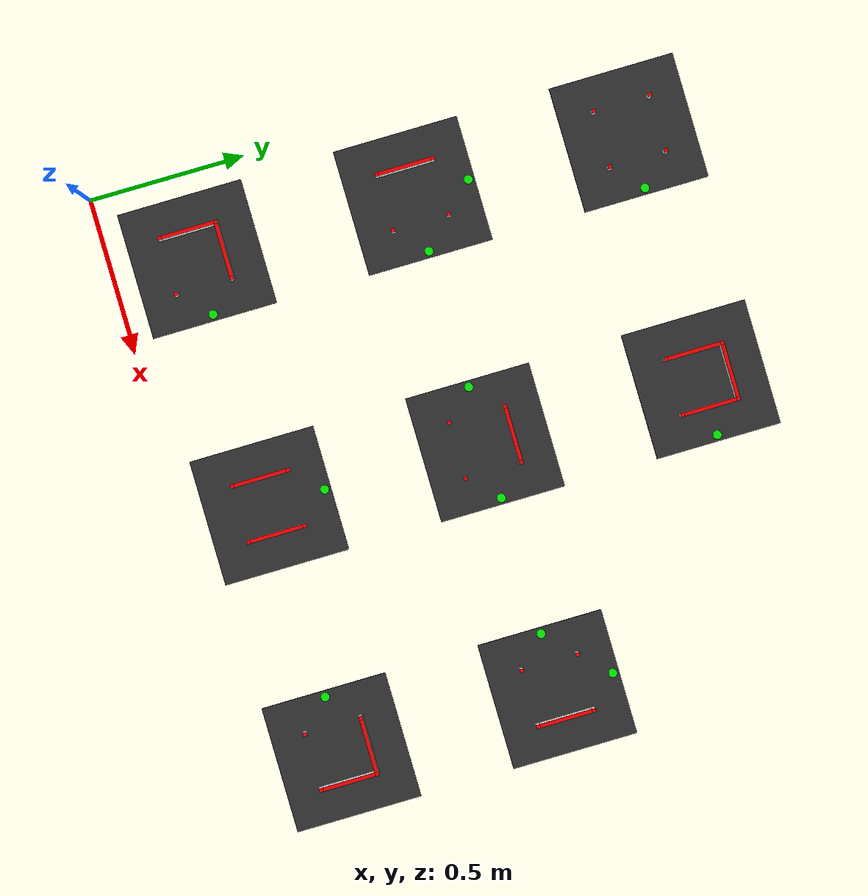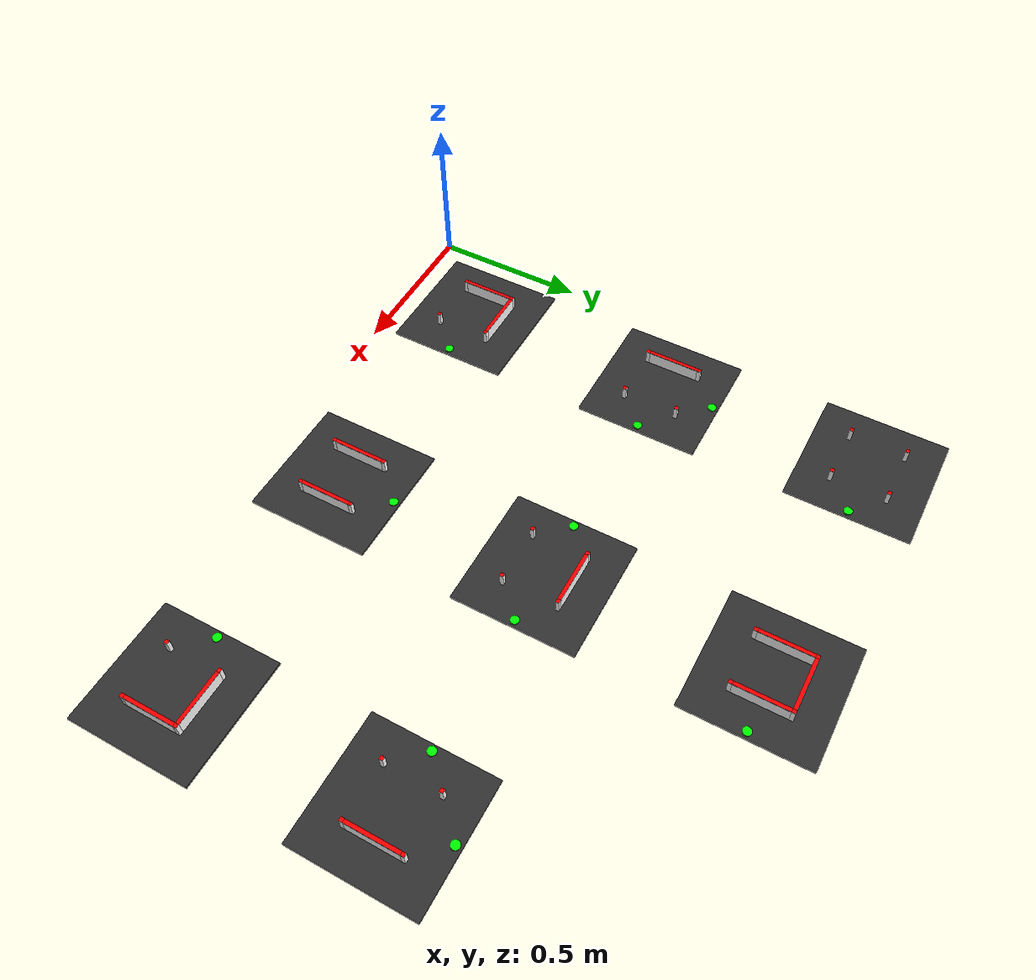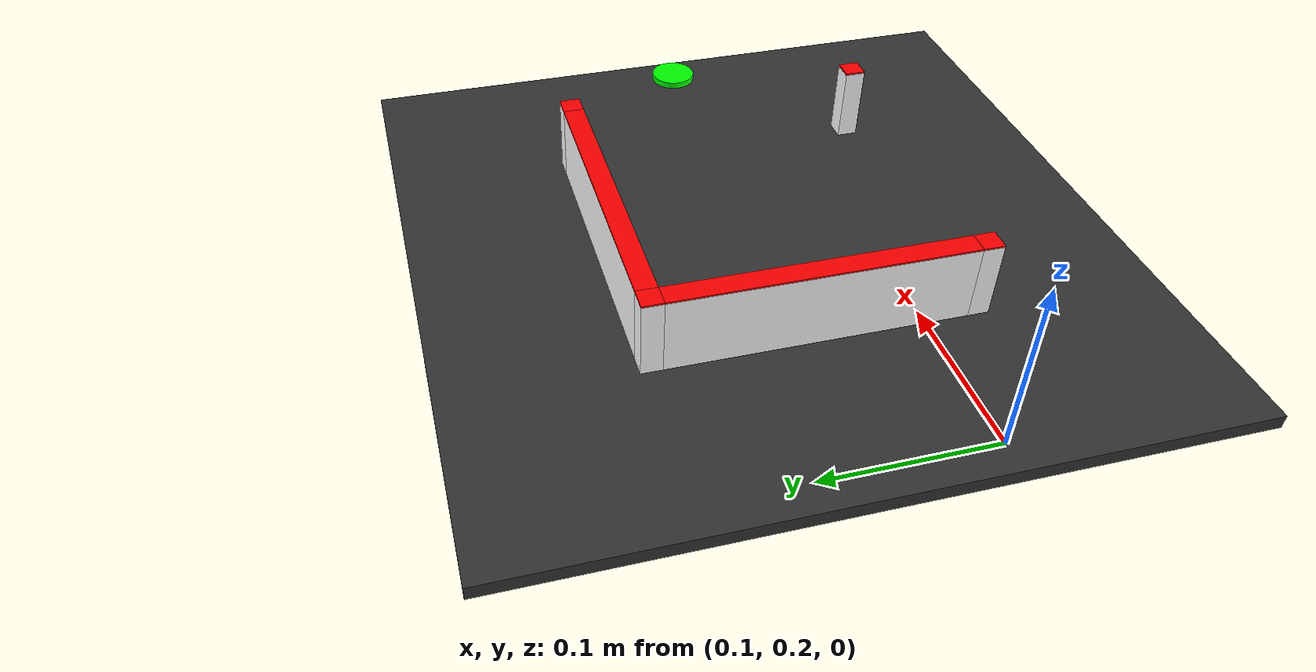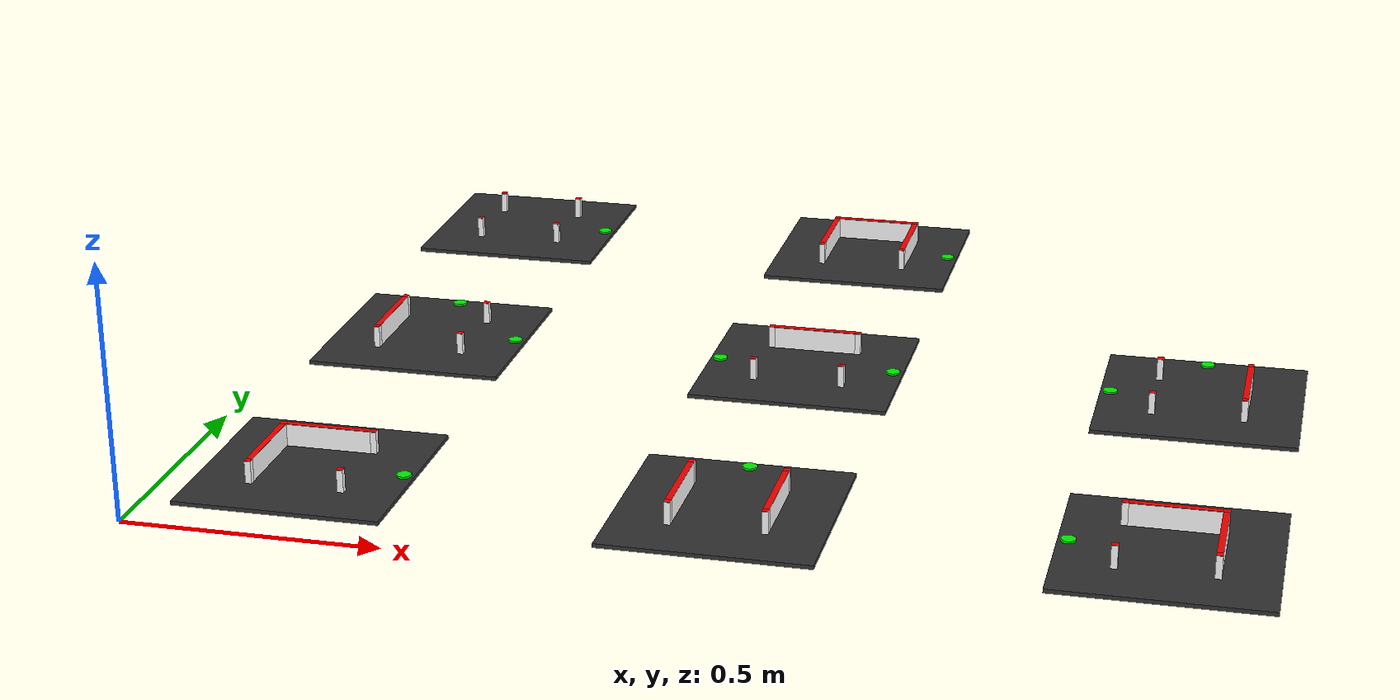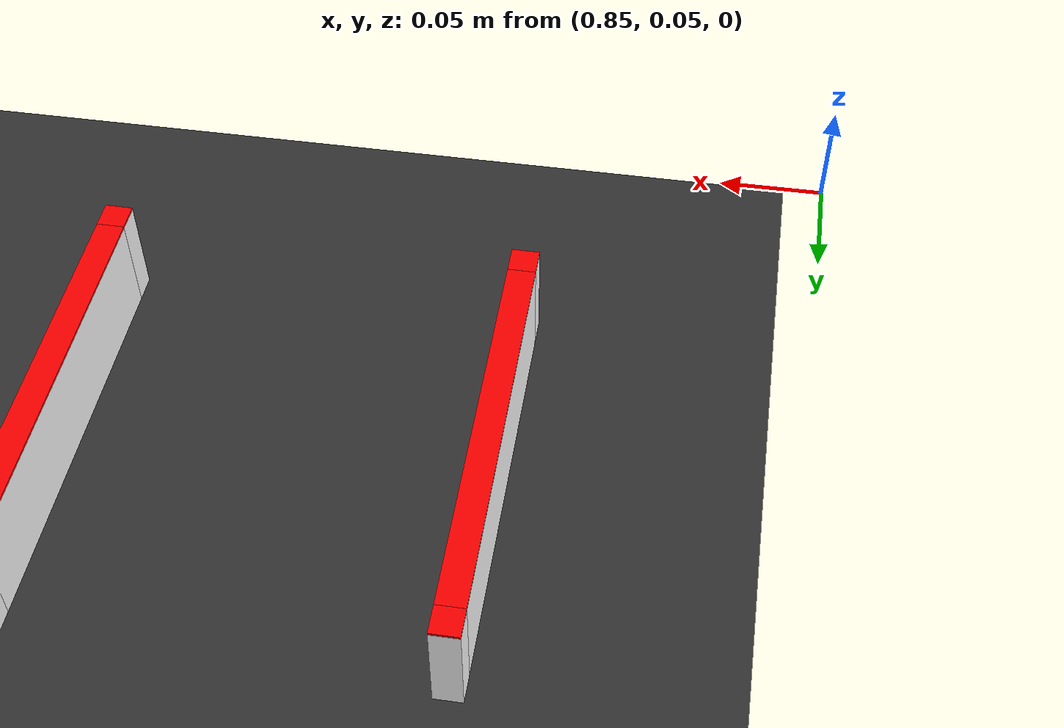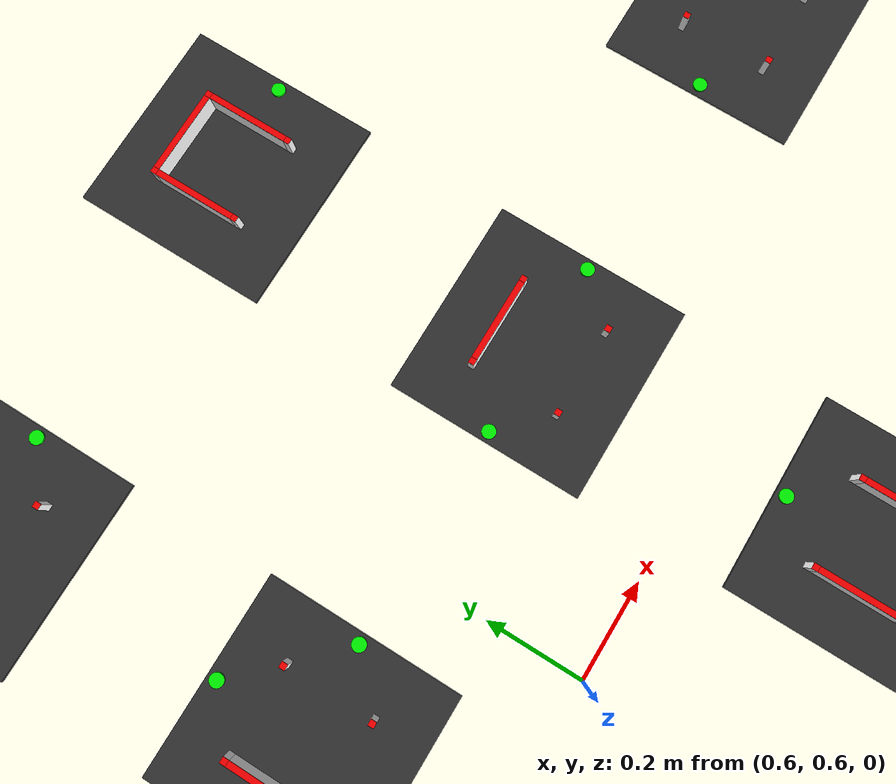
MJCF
<mujoco model="maze">
<compiler angle="degree" coordinate="local" inertiafromgeom="true" />
    <option integrator="RK4" />
    <worldbody>
       <!-- ベース板 -->
        <body name="base_plate1" pos="0.27 0.27 0.013">
        <geom type="box" mass="0.1" size="0.20 0.20 0.004" rgba="0.2 0.2 0.2 1" friction="0.0 0.0 0.0"/>
        </body>

        <!-- Column 1-6-->
        <body pos="0.18 0.18 0.037">
            <body pos="0 0 -0.0005">
                <geom type="box" mass="0.01" size="0.006 0.006 0.0245" rgba="1 1 1 1"/>
            </body>
            <!--柱上赤蓋-->
            <body pos="0 0 0.0245">
                <geom type="box" mass="0.01" size="0.006 0.006 0.0005" rgba="1 0 0 1"/>
            </body>
        </body>
        <!-- Column 1-7-->
        <body pos="0.36 0.18 0.037">
            <body pos="0 0 -0.0005">
                <geom type="box" mass="0.01" size="0.006 0.006 0.0245" rgba="1 1 1 1"/>
            </body>
            <!--柱上赤蓋-->
            <body pos="0 0 0.0245">
                <geom type="box" mass="0.01" size="0.006 0.006 0.0005" rgba="1 0 0 1"/>
            </body>
        </body>
        <!-- Column 2-10-->
        <body pos="0.18 0.36 0.037">
            <body pos="0 0 -0.0005">
                <geom type="box" mass="0.01" size="0.006 0.006 0.0245" rgba="1 1 1 1"/>
            </body>
            <!--柱上赤蓋-->
            <body pos="0 0 0.0245">
                <geom type="box" mass="0.01" size="0.006 0.006 0.0005" rgba="1 0 0 1"/>
            </body>
        </body>
        <!-- Column 1-11-->
        <body pos="0.36 0.36 0.037">
            <body pos="0 0 -0.0005">
                <geom type="box" mass="0.01" size="0.006 0.006 0.0245" rgba="1 1 1 1"/>
            </body>
            <!--柱上赤蓋-->
            <body pos="0 0 0.0245">
                <geom type="box" mass="0.01" size="0.006 0.006 0.0005" rgba="1 0 0 1"/>
            </body>
        </body>

        <!--ベース板2-->
        <body name="base_plate2" pos="1.07 0.27 0.013">
        <geom type="box" mass="0.1" size="0.2 0.2 0.004" rgba="0.2 0.2 0.2 1" friction="0.0 0.0 0.0"/>
        </body>

        <!-- Column 2-6-->
        <body pos="0.98 0.18 0.037">
            <body pos="0 0 -0.0005">
                <geom type="box" mass="0.01" size="0.006 0.006 0.0245" rgba="1 1 1 1"/>
            </body>
            <!--柱上赤蓋-->
            <body pos="0 0 0.0245">
                <geom type="box" mass="0.01" size="0.006 0.006 0.0005" rgba="1 0 0 1"/>
            </body>
        </body>
        <!-- Column 2-7-->
        <body pos="1.16 0.18 0.037">
            <body pos="0 0 -0.0005">
                <geom type="box" mass="0.01" size="0.006 0.006 0.0245" rgba="1 1 1 1"/>
            </body>
            <!--柱上赤蓋-->
            <body pos="0 0 0.0245">
                <geom type="box" mass="0.01" size="0.006 0.006 0.0005" rgba="1 0 0 1"/>
            </body>
        </body>
        <!-- Column 2-10-->
        <body pos="0.98 0.36 0.037">
            <body pos="0 0 -0.0005">
                <geom type="box" mass="0.01" size="0.006 0.006 0.0245" rgba="1 1 1 1"/>
            </body>
            <!--柱上赤蓋-->
            <body pos="0 0 0.0245">
                <geom type="box" mass="0.01" size="0.006 0.006 0.0005" rgba="1 0 0 1"/>
            </body>
        </body>
        <!-- Column 2-11-->
        <body pos="1.16 0.36 0.037">
            <body pos="0 0 -0.0005">
                <geom type="box" mass="0.01" size="0.006 0.006 0.0245" rgba="1 1 1 1"/>
            </body>
            <!--柱上赤蓋-->
            <body pos="0 0 0.0245">
                <geom type="box" mass="0.01" size="0.006 0.006 0.0005" rgba="1 0 0 1"/>
            </body>
        </body>

        <!--ベース板3-->
        <body name="base_plate3" pos="1.87 0.27 0.013">
        <geom type="box" mass="0.1" size="0.2 0.2 0.004" rgba="0.2 0.2 0.2 1" friction="0.0 0.0 0.0"/>
        </body>

        <!-- Column 3-6-->
        <body pos="1.78 0.18 0.037">
            <body pos="0.0 0 -0.0005">
                <geom type="box" mass="0.01" size="0.006 0.006 0.0245" rgba="1 1 1 1"/>
            </body>
            <!--柱上赤蓋-->
            <body pos="0.0 0 0.0245">
                <geom type="box" mass="0.01" size="0.006 0.006 0.0005" rgba="1 0 0 1"/>
            </body>
        </body>
        <!-- Column 3-7-->
        <body pos="1.96 0.18 0.037">
            <body pos="0.0 0 -0.0005">
                <geom type="box" mass="0.01" size="0.006 0.006 0.0245" rgba="1 1 1 1"/>
            </body>
            <!--柱上赤蓋-->
            <body pos="0.0 0 0.0245">
                <geom type="box" mass="0.01" size="0.006 0.006 0.0005" rgba="1 0 0 1"/>
            </body>
        </body>
        <!-- Column 3-10-->
        <body pos="1.78 0.36 0.037">
            <body pos="0.0 0 -0.0005">
                <geom type="box" mass="0.01" size="0.006 0.006 0.0245" rgba="1 1 1 1"/>
            </body>
            <!--柱上赤蓋-->
            <body pos="0.0 0 0.0245">
                <geom type="box" mass="0.01" size="0.006 0.006 0.0005" rgba="1 0 0 1"/>
            </body>
        </body>
        <!-- Column 3-11-->
        <body pos="1.96 0.36 0.037">
            <body pos="0.0 0 -0.0005">
                <geom type="box" mass="0.01" size="0.006 0.006 0.0245" rgba="1 1 1 1"/>
            </body>
            <!--柱上赤蓋-->
            <body pos="0.0 0 0.0245">
                <geom type="box" mass="0.01" size="0.006 0.006 0.0005" rgba="1 0 0 1"/>
            </body>
        </body>

        <!-- #############################Y軸方向に増やす###############################-->
        <!-- #############################Y軸方向に増やす###############################-->
        <!-- #############################Y軸方向に増やす###############################-->
        <!-- #############################Y軸方向に増やす###############################-->
        <!-- #############################Y軸方向に増やす###############################-->
        <!-- #############################Y軸方向に増やす###############################-->
        <!-- #############################Y軸方向に増やす###############################-->
        <!-- #############################Y軸方向に増やす###############################-->

        <!--ベース板4-->
        <body name="base_plate4" pos="0.27 0.97 0.013">
        <geom type="box" mass="0.1" size="0.2 0.2 0.004" rgba="0.2 0.2 0.2 1" friction="0.0 0.0 0.0"/>
        </body>

        <!-- Column 4-6-->
        <body pos="0.18 0.88 0.037">
            <body pos="0 0 -0.0005">
                <geom type="box" mass="0.01" size="0.006 0.006 0.0245" rgba="1 1 1 1"/>
            </body>
            <!--柱上赤蓋-->
            <body pos="0 0 0.0245">
                <geom type="box" mass="0.01" size="0.006 0.006 0.0005" rgba="1 0 0 1"/>
            </body>
        </body>
        <!-- Column 4-7-->
        <body pos="0.36 0.88 0.037">
            <body pos="0 0 -0.0005">
                <geom type="box" mass="0.01" size="0.006 0.006 0.0245" rgba="1 1 1 1"/>
            </body>
            <!--柱上赤蓋-->
            <body pos="0 0 0.0245">
                <geom type="box" mass="0.01" size="0.006 0.006 0.0005" rgba="1 0 0 1"/>
            </body>
        </body>
        <!-- Column 4-10-->
        <body pos="0.18 1.06 0.037">
            <body pos="0 0 -0.0005">
                <geom type="box" mass="0.01" size="0.006 0.006 0.0245" rgba="1 1 1 1"/>
            </body>
            <!--柱上赤蓋-->
            <body pos="0 0 0.0245">
                <geom type="box" mass="0.01" size="0.006 0.006 0.0005" rgba="1 0 0 1"/>
            </body>
        </body>
        <!-- Column 4-11-->
        <body pos="0.36 1.06 0.037">
            <body pos="0 0 -0.0005">
                <geom type="box" mass="0.01" size="0.006 0.006 0.0245" rgba="1 1 1 1"/>
            </body>
            <!--柱上赤蓋-->
            <body pos="0 0 0.0245">
                <geom type="box" mass="0.01" size="0.006 0.006 0.0005" rgba="1 0 0 1"/>
            </body>
        </body>

        <!--ベース板5-->
        <body name="base_plate5" pos="1.07 0.97 0.013">
        <geom type="box" mass="0.1" size="0.2 0.2 0.004" rgba="0.2 0.2 0.2 1" friction="0.0 0.0 0.0"/>
        </body>

        <!-- Column 5-6-->
        <body pos="0.98 0.88 0.037">
            <body pos="0 0 -0.0005">
                <geom type="box" mass="0.01" size="0.006 0.006 0.0245" rgba="1 1 1 1"/>
            </body>
            <!--柱上赤蓋-->
            <body pos="0 0 0.0245">
                <geom type="box" mass="0.01" size="0.006 0.006 0.0005" rgba="1 0 0 1"/>
            </body>
        </body>
        <!-- Column 5-7-->
        <body pos="1.16 0.88 0.037">
            <body pos="0 0 -0.0005">
                <geom type="box" mass="0.01" size="0.006 0.006 0.0245" rgba="1 1 1 1"/>
            </body>
            <!--柱上赤蓋-->
            <body pos="0 0 0.0245">
                <geom type="box" mass="0.01" size="0.006 0.006 0.0005" rgba="1 0 0 1"/>
            </body>
        </body>
        <!-- Column 5-10-->
        <body pos="0.98 1.06 0.037">
            <body pos="0 0 -0.0005">
                <geom type="box" mass="0.01" size="0.006 0.006 0.0245" rgba="1 1 1 1"/>
            </body>
            <!--柱上赤蓋-->
            <body pos="0 0 0.0245">
                <geom type="box" mass="0.01" size="0.006 0.006 0.0005" rgba="1 0 0 1"/>
            </body>
        </body>
        <!-- Column 5-11-->
        <body pos="1.16 1.06 0.037">
            <body pos="0 0 -0.0005">
                <geom type="box" mass="0.01" size="0.006 0.006 0.0245" rgba="1 1 1 1"/>
            </body>
            <!--柱上赤蓋-->
            <body pos="0 0 0.0245">
                <geom type="box" mass="0.01" size="0.006 0.006 0.0005" rgba="1 0 0 1"/>
            </body>
        </body>

        <!--ベース板6-->
        <body name="base_plate6" pos="1.87 0.97 0.013">
        <geom type="box" mass="0.1" size="0.2 0.2 0.004" rgba="0.2 0.2 0.2 1" friction="0.0 0.0 0.0"/>
        </body>

        <!-- Column 6-6-->
        <body pos="1.78 0.88 0.037">
            <body pos="0 0 -0.0005">
                <geom type="box" mass="0.01" size="0.006 0.006 0.0245" rgba="1 1 1 1"/>
            </body>
            <!--柱上赤蓋-->
            <body pos="0 0 0.0245">
                <geom type="box" mass="0.01" size="0.006 0.006 0.0005" rgba="1 0 0 1"/>
            </body>
        </body>
        <!-- Column 6-7-->
        <body pos="1.96 0.88 0.037">
            <body pos="0 0 -0.0005">
                <geom type="box" mass="0.01" size="0.006 0.006 0.0245" rgba="1 1 1 1"/>
            </body>
            <!--柱上赤蓋-->
            <body pos="0 0 0.0245">
                <geom type="box" mass="0.01" size="0.006 0.006 0.0005" rgba="1 0 0 1"/>
            </body>
        </body>
        <!-- Column 6-10-->
        <body pos="1.78 1.06 0.037">
            <body pos="0 0 -0.0005">
                <geom type="box" mass="0.01" size="0.006 0.006 0.0245" rgba="1 1 1 1"/>
            </body>
            <!--柱上赤蓋-->
            <body pos="0 0 0.0245">
                <geom type="box" mass="0.01" size="0.006 0.006 0.0005" rgba="1 0 0 1"/>
            </body>
        </body>
        <!-- Column 6-11-->
        <body pos="1.96 1.06 0.037">
            <body pos="0 0 -0.0005">
                <geom type="box" mass="0.01" size="0.006 0.006 0.0245" rgba="1 1 1 1"/>
            </body>
            <!--柱上赤蓋-->
            <body pos="0 0 0.0245">
                <geom type="box" mass="0.01" size="0.006 0.006 0.0005" rgba="1 0 0 1"/>
            </body>
        </body>

        <!-- #############################3列目###############################-->

        <!--ベース板7-->
        <body name="base_plate7" pos="0.27 1.67 0.013">
        <geom type="box" mass="0.1" size="0.2 0.2 0.004" rgba="0.2 0.2 0.2 1" friction="0.0 0.0 0.0"/>
        </body>

        <!-- Column 7-6-->
        <body pos="0.18 1.58 0.037">
            <body pos="0 0 -0.0005">
                <geom type="box" mass="0.01" size="0.006 0.006 0.0245" rgba="1 1 1 1"/>
            </body>
            <!--柱上赤蓋-->
            <body pos="0 0 0.0245">
                <geom type="box" mass="0.01" size="0.006 0.006 0.0005" rgba="1 0 0 1"/>
            </body>
        </body>
        <!-- Column 7-7-->
        <body pos="0.36 1.58 0.037">
            <body pos="0 0 -0.0005">
                <geom type="box" mass="0.01" size="0.006 0.006 0.0245" rgba="1 1 1 1"/>
            </body>
            <!--柱上赤蓋-->
            <body pos="0 0 0.0245">
                <geom type="box" mass="0.01" size="0.006 0.006 0.0005" rgba="1 0 0 1"/>
            </body>
        </body>
        <!-- Column 7-10-->
        <body pos="0.18 1.76 0.037">
            <body pos="0 0 -0.0005">
                <geom type="box" mass="0.01" size="0.006 0.006 0.0245" rgba="1 1 1 1"/>
            </body>
            <!--柱上赤蓋-->
            <body pos="0 0 0.0245">
                <geom type="box" mass="0.01" size="0.006 0.006 0.0005" rgba="1 0 0 1"/>
            </body>
        </body>
        <!-- Column 7-11-->
        <body pos="0.36 1.76 0.037">
            <body pos="0 0 -0.0005">
                <geom type="box" mass="0.01" size="0.006 0.006 0.0245" rgba="1 1 1 1"/>
            </body>
            <!--柱上赤蓋-->
            <body pos="0 0 0.0245">
                <geom type="box" mass="0.01" size="0.006 0.006 0.0005" rgba="1 0 0 1"/>
            </body>
        </body>

        <!--ベース板8-->
        <body name="base_plate8" pos="1.07 1.67 0.013">
        <geom type="box" mass="0.1" size="0.2 0.2 0.004" rgba="0.2 0.2 0.2 1" friction="0.0 0.0 0.0"/>
        </body>

        <!-- Column 8-6-->
        <body pos="0.98 1.58 0.037">
            <body pos="0 0 -0.0005">
                <geom type="box" mass="0.01" size="0.006 0.006 0.0245" rgba="1 1 1 1"/>
            </body>
            <!--柱上赤蓋-->
            <body pos="0 0 0.0245">
                <geom type="box" mass="0.01" size="0.006 0.006 0.0005" rgba="1 0 0 1"/>
            </body>
        </body>
        <!-- Column 8-7-->
        <body pos="1.16 1.58 0.037">
            <body pos="0 0 -0.0005">
                <geom type="box" mass="0.01" size="0.006 0.006 0.0245" rgba="1 1 1 1"/>
            </body>
            <!--柱上赤蓋-->
            <body pos="0 0 0.0245">
                <geom type="box" mass="0.01" size="0.006 0.006 0.0005" rgba="1 0 0 1"/>
            </body>
        </body>
        <!-- Column 8-10-->
        <body pos="0.98 1.76 0.037">
            <body pos="0 0 -0.0005">
                <geom type="box" mass="0.01" size="0.006 0.006 0.0245" rgba="1 1 1 1"/>
            </body>
            <!--柱上赤蓋-->
            <body pos="0 0 0.0245">
                <geom type="box" mass="0.01" size="0.006 0.006 0.0005" rgba="1 0 0 1"/>
            </body>
        </body>
        <!-- Column 8-11-->
        <body pos="1.16 1.76 0.037">
            <body pos="0 0 -0.0005">
                <geom type="box" mass="0.01" size="0.006 0.006 0.0245" rgba="1 1 1 1"/>
            </body>
            <!--柱上赤蓋-->
            <body pos="0 0 0.0245">
                <geom type="box" mass="0.01" size="0.006 0.006 0.0005" rgba="1 0 0 1"/>
            </body>
        </body>

        <!-- #############################基本コースここまで###############################-->
        <!-- #############################基本コースここまで###############################-->
        <!-- #############################基本コースここまで###############################-->
        <!-- #############################基本コースここまで###############################-->

        <!-- #############################ランダム出現用壁の定義###############################-->
        <!-- #############################ランダム出現用壁の定義###############################-->
        <!-- #############################ランダム出現用壁の定義###############################-->
        <!-- #############################ランダム出現用壁の定義###############################-->

        <!-- #############################コース1###############################-->
        <!-- #############################コース1###############################-->
        <!-- Wall 1-左-->
        <body pos="0.18 0.27 0.037" name="1-forward_wall">
            <body pos="0 0 -0.0005">
                <geom type="box" mass="0.01" size="0.006 0.084 0.0245" rgba="1 1 1 1"/>
            </body>
            <!--壁上赤蓋-->
            <body pos="0 0 0.0245">
                <geom type="box" mass="0.01" size="0.006 0.084 0.0005" rgba="1 0 0 1"/>
            </body>
        </body>
        <!-- Wall 1-前-->
        <body pos="0.27 0.36 0.037" name="1-left_wall">
            <body pos="0 0 -0.0005">
                <geom type="box" mass="0.01" size="0.084 0.006 0.0245" rgba="1 1 1 1"/>
            </body>
            <!--壁上赤蓋-->
            <body pos="0 0 0.0245">
                <geom type="box" mass="0.01" size="0.084 0.006 0.0005" rgba="1 0 0 1"/>
            </body>
        </body>

        <!-- ###ゴール### -->
        <geom type="cylinder" name="goal_1" pos="0.45 0.27 0.015" size="0.014 0.006" rgba="0 1 0 1"/>
        <site type="cylinder" name="goal_1" pos="0.45 0.27 0.015" size="0.014 0.006" rgba="0 1 0 1"/>

    <!-- #############################コース2###############################-->
<!-- #############################コース2###############################-->

<!-- Wall 2-左-->
<body pos="0.98 0.27 0.037" name="2-forward_wall">
    <!-- 子bodyは変更なし -->
    <body pos="0 0 -0.0005">
        <geom type="box" mass="0.01" size="0.006 0.084 0.0245" rgba="1 1 1 1"/>
    </body>
    <!--壁上赤蓋-->
    <body pos="0 0 0.0245">
        <geom type="box" mass="0.01" size="0.006 0.084 0.0005" rgba="1 0 0 1"/>
    </body>
</body>

<!-- Wall 2-右-->
<body pos="1.16 0.27 0.037" name="2-right_wall">
    <!-- 子bodyは変更なし -->
    <body pos="0 0 -0.0005">
        <geom type="box" mass="0.01" size="0.006 0.084 0.0245" rgba="1 1 1 1"/>
    </body>
    <!--壁上赤蓋-->
    <body pos="0 0 0.0245">
        <geom type="box" mass="0.01" size="0.006 0.084 0.0005" rgba="1 0 0 1"/>
    </body>
</body>

<!-- ###ゴール### -->
<geom type="cylinder" name="goal_2" pos="1.07 0.45 0.015" size="0.014 0.006" rgba="0 1 0 1"/>
<site type="cylinder" name="goal_2" pos="1.07 0.45 0.015" size="0.014 0.006" rgba="0 1 0 1"/>

    <!-- #############################コース3###############################-->
<!-- #############################コース3###############################-->

<!-- Wall 3-前-->
<body pos="1.87 0.36 0.037" name="3-left_wall">
    <!-- 子bodyは変更なし -->
    <body pos="0 0 -0.0005">
        <geom type="box" mass="0.01" size="0.084 0.006 0.0245" rgba="1 1 1 1"/>
    </body>
    <!--壁上赤蓋-->
    <body pos="0 0 0.0245">
        <geom type="box" mass="0.01" size="0.084 0.006 0.0005" rgba="1 0 0 1"/>
    </body>
</body>

<!-- Wall 3-右-->
<body pos="1.96 0.27 0.037" name="3-right_wall">
    <!-- 子bodyは変更なし -->
    <body pos="0 0 -0.0005">
        <geom type="box" mass="0.01" size="0.006 0.084 0.0245" rgba="1 1 1 1"/>
    </body>
    <!--壁上赤蓋-->
    <body pos="0 0 0.0245">
        <geom type="box" mass="0.01" size="0.006 0.084 0.0005" rgba="1 0 0 1"/>
    </body>
</body>

<!-- ###ゴール### -->
<geom type="cylinder" name="goal_3" pos="1.69 0.27 0.015" size="0.014 0.006" rgba="0 1 0 1"/>
<site type="cylinder" name="goal_3" pos="1.69 0.27 0.015" size="0.014 0.006" rgba="0 1 0 1"/>

        <!-- #############################コース4###############################-->
        <!-- #############################コース4###############################-->
<!-- #############################コース4###############################-->

<!-- Wall 4-左-->
<body pos="0.18 0.97 0.037" name="4-forward_wall">
    <!-- 子bodyは変更なし -->
    <body pos="0 0 -0.0005">
        <geom type="box" mass="0.01" size="0.006 0.084 0.0245" rgba="1 1 1 1"/>
    </body>
    <!--壁上赤蓋-->
    <body pos="0 0 0.0245">
        <geom type="box" mass="0.01" size="0.006 0.084 0.0005" rgba="1 0 0 1"/>
    </body>
</body>

<!-- ###ゴール### -->
<geom type="cylinder" name="goal_4" pos="0.45 0.97 0.015" size="0.014 0.006" rgba="0 1 0 1"/>
<site type="cylinder" name="goal_4" pos="0.45 0.97 0.015" size="0.014 0.006" rgba="0 1 0 1"/>
<geom type="cylinder" name="goal_4-2" pos="0.27 1.15 0.015" size="0.014 0.006" rgba="0 1 0 1"/>
<site type="cylinder" name="goal_4-2" pos="0.27 1.15 0.015" size="0.014 0.006" rgba="0 1 0 1"/>

<!-- #############################コース5###############################-->
<!-- #############################コース5###############################-->

<!-- Wall 5-前-->
<body pos="1.07 1.06 0.037" name="5-left_wall">
    <!-- 子bodyは変更なし -->
    <body pos="0 0 -0.0005">
        <geom type="box" mass="0.01" size="0.084 0.006 0.0245" rgba="1 1 1 1"/>
    </body>
    <!--壁上赤蓋-->
    <body pos="0 0 0.0245">
        <geom type="box" mass="0.01" size="0.084 0.006 0.0005" rgba="1 0 0 1"/>
    </body>
</body>

<!-- ###ゴール### -->
<geom type="cylinder" name="goal_5" pos="1.25 0.97 0.015" size="0.014 0.006" rgba="0 1 0 1"/>
<site type="cylinder" name="goal_5" pos="1.25 0.97 0.015" size="0.014 0.006" rgba="0 1 0 1"/>
<geom type="cylinder" name="goal_5-2" pos="0.89 0.97 0.015" size="0.014 0.006" rgba="0 1 0 1"/>
<site type="cylinder" name="goal_5-2" pos="0.89 0.97 0.015" size="0.014 0.006" rgba="0 1 0 1"/>

<!-- #############################コース6###############################-->
<!-- #############################コース6###############################-->

<!-- Wall 6-右-->
<body pos="1.96 0.97 0.037" name="6-right_wall">
    <!-- 子bodyは変更なし -->
    <body pos="0 0 -0.0005">
        <geom type="box" mass="0.01" size="0.006 0.084 0.0245" rgba="1 1 1 1"/>
    </body>
    <!--壁上赤蓋-->
    <body pos="0 0 0.0245">
        <geom type="box" mass="0.01" size="0.006 0.084 0.0005" rgba="1 0 0 1"/>
    </body>
</body>

<!-- ###ゴール### -->
<geom type="cylinder" name="goal_6" pos="1.69 0.97 0.015" size="0.014 0.006" rgba="0 1 0 1"/>
<site type="cylinder" name="goal_6" pos="1.69 0.97 0.015" size="0.014 0.006" rgba="0 1 0 1"/>
<geom type="cylinder" name="goal_6-2" pos="1.87 1.15 0.015" size="0.014 0.006" rgba="0 1 0 1"/>
<site type="cylinder" name="goal_6-2" pos="1.87 1.15 0.015" size="0.014 0.006" rgba="0 1 0 1"/>

<!-- #############################コース7###############################-->
<!-- #############################コース7###############################-->

<!-- ###ゴール### -->
<geom type="cylinder" name="goal_7" pos="0.45 1.67 0.015" size="0.014 0.006" rgba="0 1 0 1"/>
<site type="cylinder" name="goal_7" pos="0.45 1.67 0.015" size="0.014 0.006" rgba="0 1 0 1"/>

<!-- #############################コース8###############################-->
<!-- #############################コース8###############################-->

<!-- Wall 8-左-->
<body pos="0.98 1.67 0.037" name="8-forward_wall">
    <!-- 子bodyは変更なし -->
    <body pos="0 0 -0.0005">
        <geom type="box" mass="0.01" size="0.006 0.084 0.0245" rgba="1 1 1 1"/>
    </body>
    <!--壁上赤蓋-->
    <body pos="0 0 0.0245">
        <geom type="box" mass="0.01" size="0.006 0.084 0.0005" rgba="1 0 0 1"/>
    </body>
</body>

<!-- Wall 8-前-->
<body pos="1.07 1.76 0.037" name="8-left_wall">
    <!-- 子bodyは変更なし -->
    <body pos="0 0 -0.0005">
        <geom type="box" mass="0.01" size="0.084 0.006 0.0245" rgba="1 1 1 1"/>
    </body>
    <!--壁上赤蓋-->
    <body pos="0 0 0.0245">
        <geom type="box" mass="0.01" size="0.084 0.006 0.0005" rgba="1 0 0 1"/>
    </body>
</body>

<!-- Wall 8-右-->
<body pos="1.16 1.67 0.037" name="8-right_wall">
    <!-- 子bodyは変更なし -->
    <body pos="0 0 -0.0005">
        <geom type="box" mass="0.01" size="0.006 0.084 0.0245" rgba="1 1 1 1"/>
    </body>
    <!--壁上赤蓋-->
    <body pos="0 0 0.0245">
        <geom type="box" mass="0.01" size="0.006 0.084 0.0005" rgba="1 0 0 1"/>
    </body>
</body>

<!-- ###ゴール### -->
<geom type="cylinder" name="goal_8" pos="1.25 1.67 0.015" size="0.014 0.006" rgba="0 1 0 1"/>
<site type="cylinder" name="goal_8" pos="1.25 1.67 0.015" size="0.014 0.006" rgba="0 1 0 1"/>

    </worldbody>
    <sensor>
        <touch name = "goal_1" site = "goal_1"/>
        <touch name = "goal_2" site = "goal_2"/>
        <touch name = "goal_3" site = "goal_3"/>
        <touch name = "goal_4" site = "goal_4"/>
        <touch name = "goal_5" site = "goal_5"/>
        <touch name = "goal_6" site = "goal_6"/>
        <touch name = "goal_7" site = "goal_7"/>
        <touch name = "goal_8" site = "goal_8"/>
    </sensor>
</mujoco>
